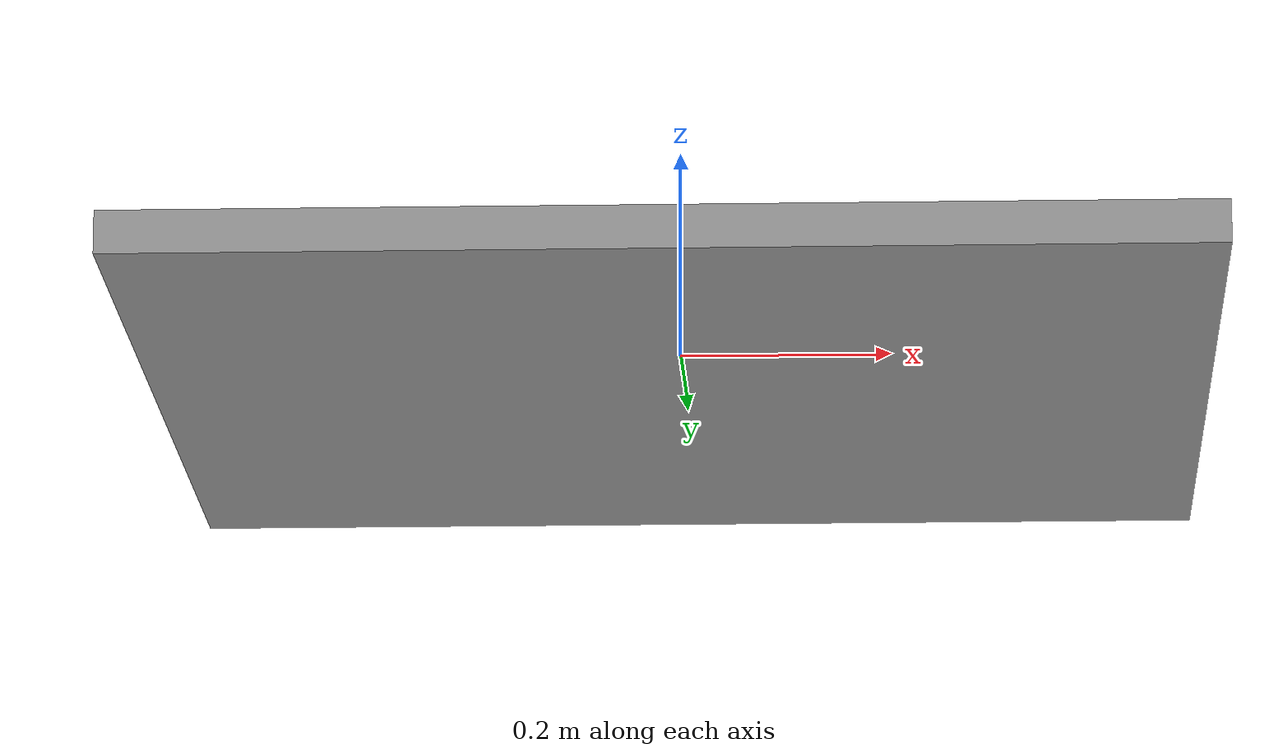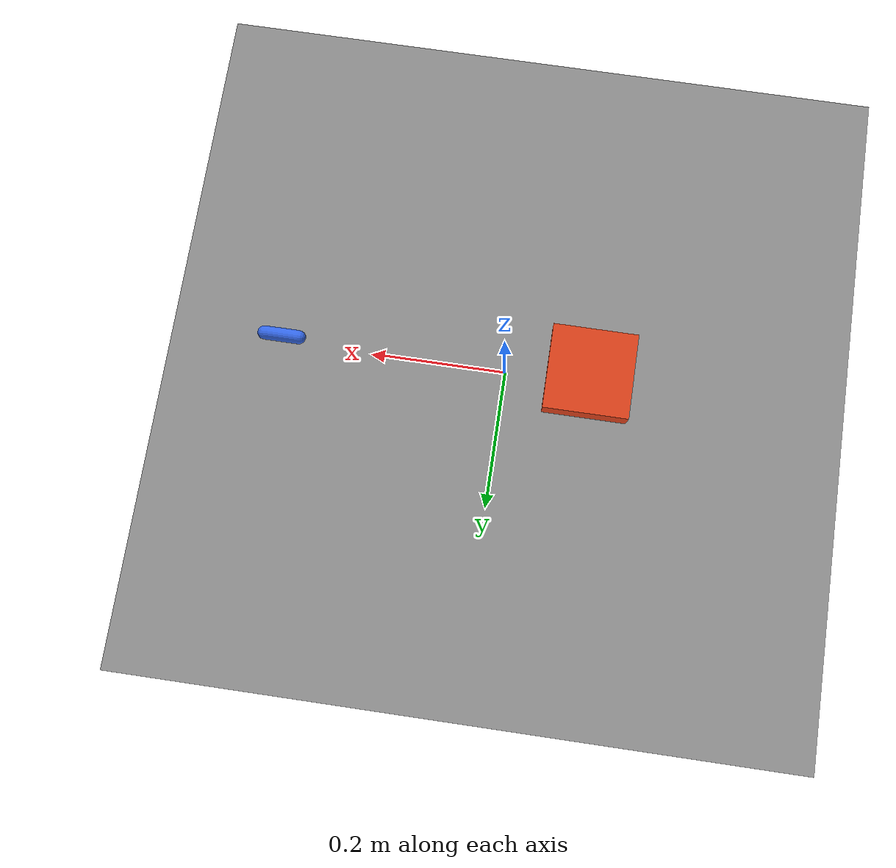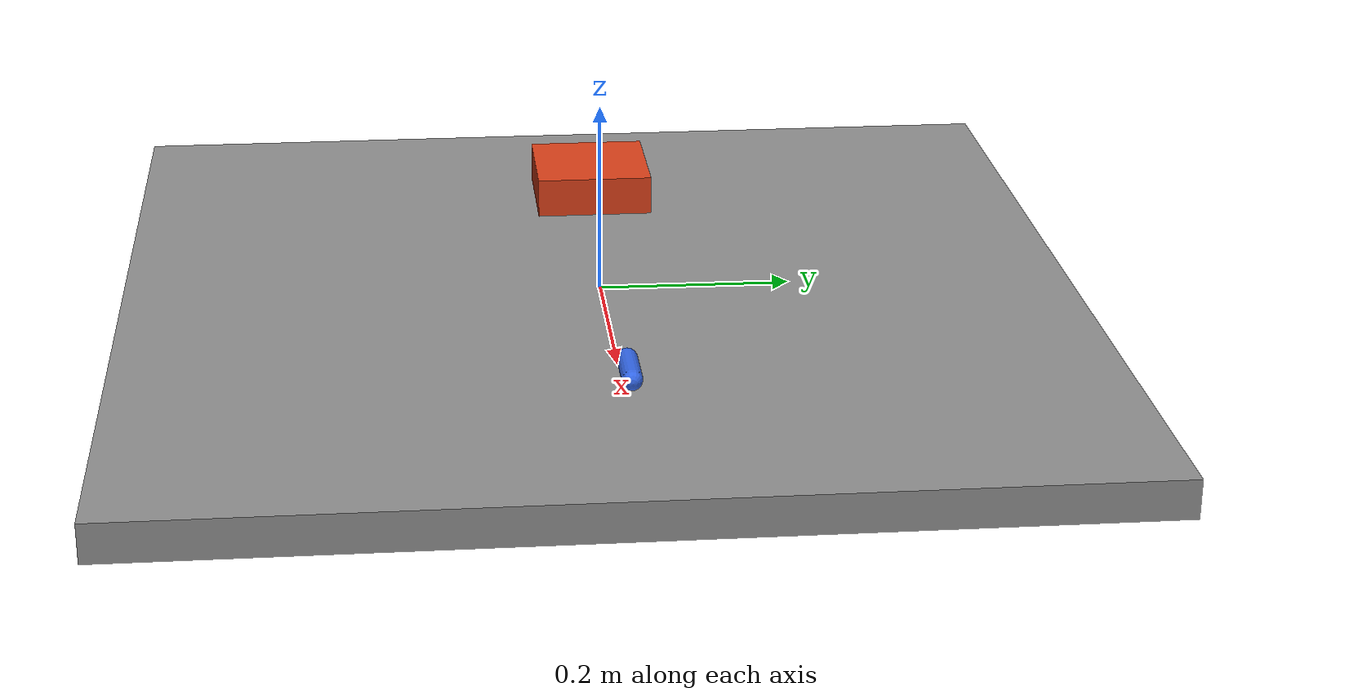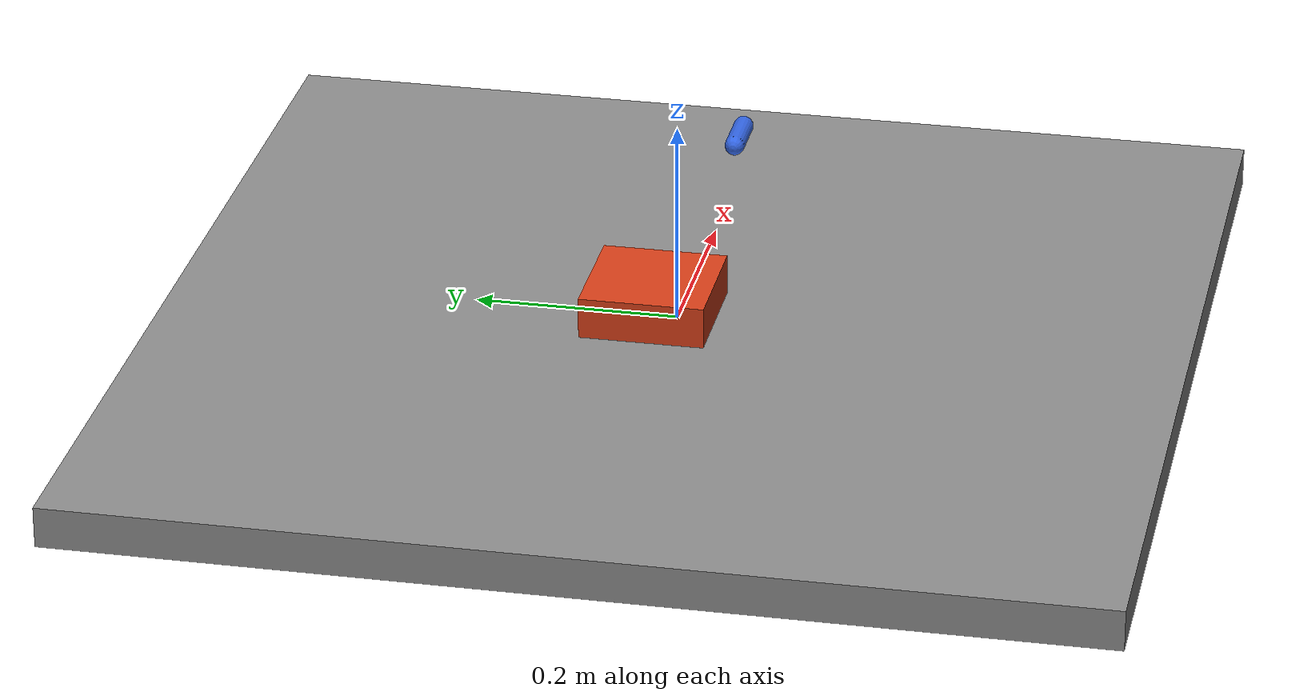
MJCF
<mujoco model="multi-free-bodies">
  <compiler angle="radian" autolimits="true"/>
  <option timestep="0.002"/>
  <default><joint damping="1" armature=".05"/><geom friction="1 .005 .0001"/></default>
  <worldbody>
    <geom name="table" type="box" size=".5 .5 .02" pos="0 0 -.02" rgba=".55 .55 .55 1"/>
    <body name="pallet" pos="-.12 0 .08">
      <freejoint name="pallet_free"/>
      <geom name="pallet_geom" type="box" size=".06 .06 .02" mass=".4" rgba=".85 .25 .1 1"/>
    </body>
    <body name="crate" pos=".08 0 .1">
      <freejoint name="crate_free"/>
      <geom name="crate_geom" type="box" size=".03 .03 .03" mass=".2" rgba=".1 .85 .2 1" group="3"/>
    </body>
    <body name="lever" pos=".3 0 .05">
      <joint name="lever_hinge" axis="0 0 1" range="-3 3"/>
      <geom name="lever_geom" type="capsule" fromto="0 0 0 .05 0 0" size=".01" mass=".05" rgba=".2 .4 .9 1"/>
    </body>
    <camera name="fixed" pos="0 -.9 .18" xyaxes="1 0 0 0 0 1" fovy="55"/>
  </worldbody>
  <actuator><position name="lever_motor" joint="lever_hinge" kp="40" kv="4"/></actuator>
</mujoco>
